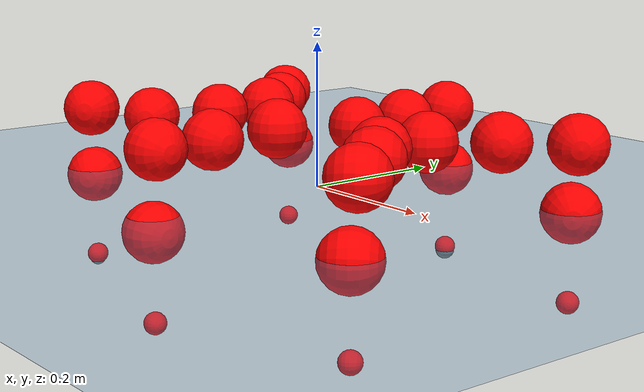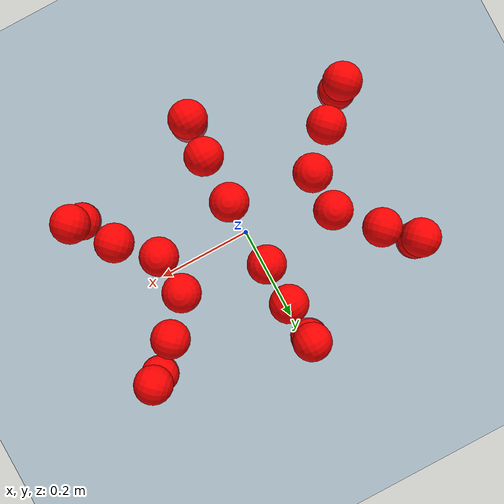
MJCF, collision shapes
<mujoco model="Golem">
  <compiler angle="radian" assetdir="assets" balanceinertia="true" inertiafromgeom="false"/>

  <option timestep="0.005" density="1.2" viscosity="2e-05"/>

  <size nkey="1"/>

  <visual>
    <quality shadowsize="8192"/>
    <map shadowclip="0.5"/>
  </visual>

  <default>
    <default class="/">
      <joint armature="0.01" damping="0.01" frictionloss="0.01"/>
      <geom contype="0" conaffinity="0" group="1" solref="-1000 -80"/>
      <site size="0.01 0.005 0.005" group="5"/>
      <general forcelimited="true" biastype="affine" gainprm="25" biasprm="0 -25 -0.5"/>
      <default class="visual">
        <geom type="mesh" group="2"/>
      </default>
      <default class="collision">
        <geom group="3"/>
      </default>
      <default class="foot">
        <geom size="0.01 0 0" condim="6" group="4" priority="1" solimp="0.015 1 0.01"/>
      </default>
      <default class="reward_collision_sphere">
        <geom group="5" rgba="1 0 0 1"/>
      </default>
    </default>
  </default>

  <asset>
    <texture type="skybox" colorspace="auto" name="//unnamed_texture_0" builtin="gradient" rgb1="0.95 0.95 0.95" rgb2="0.95 0.95 0.95" width="100" height="600"/>
    <texture type="2d" colorspace="auto" name="texplane" builtin="checker" rgb1="0.345 0.575 0.748" rgb2="0.345 0.575 0.748" markrgb="1 1 1" width="512" height="512"/>
    <material name="MatPlane" class="/" texture="texplane" texuniform="true" texrepeat="2 2" specular="0.9"/>
    <mesh name="body" class="/" file="body.stl" scale="0.001 0.001 0.001"/>
    <mesh name="coxa" class="/" file="coxa.stl" scale="0.001 0.001 0.001"/>
    <mesh name="femur" class="/" file="femur.stl" scale="0.001 0.001 0.001"/>
    <mesh name="tibia" class="/" file="tibia.stl" scale="0.001 0.001 0.001"/>
    <mesh name="tarsus" class="/" file="tarsus.stl" scale="0.001 0.001 0.001"/>
  </asset>

  <worldbody>
    <geom name="floor" class="/" size="100 100 0.125" type="plane" group="0" material="MatPlane"/>
    <light name="toplight_shadow" class="/" pos="0 0 5" dir="0.0990148 0.0990148 -0.990148" type="directional" ambient="0.04 0.04 0.04" diffuse="0.55 0.55 0.55" specular="0.12 0.12 0.12"/>
    <light name="toplight_fill" class="/" pos="0 0 5" dir="0.0990148 0.0990148 -0.990148" type="directional" castshadow="false" ambient="0.04 0.04 0.04" diffuse="0.3 0.3 0.3" specular="0.08 0.08 0.08"/>
    <body name="trunk" pos="0.00238448 0.0018754 0.00932987" quat="1 0.000517165 0.000317013 0.000388864">
      <inertial pos="-0.00272431 -0.00101275 -0.0084941" quat="0.999643 -0.0124841 -0.0233947 0.00340003" mass="3.66429" diaginertia="0.0218459 0.00312681 0.0166006"/>
      <joint name="//unnamed_joint_0" type="free"/>
      <geom name="//unnamed_geom_1" class="/" pos="0 0 0.0707702" quat="1 0 0 0" type="mesh" rgba="0.9 0.9 0.9 1" mesh="body"/>
      <site name="imu" class="/" pos="0.156994 -0.00868779 0.109898" size="0.0101402"/>
      <camera name="track" class="/" pos="0 -1.59962 0" quat="0.707107 0.707107 0 0" mode="trackcom"/>
      <camera name="ego_camera" class="/" pos="0.147739 0 0.110578" quat="-0.5 -0.5 0.5 0.5"/>
      <body name="coxa_RR" pos="-0.201381 -0.0673488 0.0763292" quat="0.38282 -0.000384386 -0.00045174 -0.923823">
        <inertial pos="-0.000914982 0.00908359 0.00156159" quat="0.999994 -0.0012493 0.000733091 0.00318758" mass="0.237871" diaginertia="0.0228221 0.00335904 0.0185821"/>
        <joint name="coxa_joint_RR" class="/" pos="0 0 0" axis="0.000236962 -0.0540132 -0.99854" range="-3.13162 3.23427" armature="0.0118877" damping="0.0240476" frictionloss="0.0109157"/>
        <geom name="//unnamed_geom_2" class="/" type="mesh" rgba="0.2 0.2 0.2 1" mesh="coxa"/>
        <geom name="//unnamed_geom_3" class="reward_collision_sphere" size="0.0405606" pos="-0.0340936 0 0"/>
        <body name="femur_RR" pos="0.0668841 0.000881999 -0.00686395" quat="0.500139 -0.500062 0.499905 0.499894">
          <inertial pos="-0.000552732 -0.00340096 0.00327793" quat="0.999985 0.00321536 0.00426543 0.00103528" mass="0.199874" diaginertia="0.0185017 0.00325474 0.0162334"/>
          <joint name="femur_joint_RR" class="/" pos="0 0 0" axis="0.00209046 -0.00354957 -0.999992" stiffness="0.0115603" range="-3.13651 3.30245" armature="0.012496" damping="0.0232706" frictionloss="0.00751204"/>
          <geom name="//unnamed_geom_4" class="/" type="mesh" rgba="0.9 0.9 0.9 1" mesh="femur"/>
          <geom name="//unnamed_geom_5" class="reward_collision_sphere" size="0.0405606"/>
          <body name="tibia_RR" pos="-0.00790466 -0.0914095 -0.00490864" quat="0.00141496 0.999999 6.09632e-05 0.000215671">
            <inertial pos="0.00720007 0.00408193 -3.28247e-05" quat="0.999589 0.00440583 -0.0212073 -0.0187823" mass="0.208025" diaginertia="0.0201423 0.00316027 0.0160406"/>
            <joint name="tibia_joint_RR" class="/" pos="0 0 0" axis="-0.00184294 -0.015092 0.999884" range="-2.96236 3.17094" armature="0.0126776" damping="0.0261826" frictionloss="0.0110124"/>
            <geom name="//unnamed_geom_6" class="/" type="mesh" rgba="0.2 0.2 0.2 1" mesh="tibia"/>
            <geom name="//unnamed_geom_7" class="reward_collision_sphere" size="0.0405606"/>
            <body name="tarsus_RR" pos="0.0991256 -0.0014665 -3.7769e-05" quat="1 -1.81378e-05 1.57369e-05 8.54645e-06">
              <inertial pos="0.0712951 -0.00789939 0.00527565" quat="0.494833 0.50342 0.499544 0.502159" mass="0.215013" diaginertia="0.0188059 0.00319284 0.0167514"/>
              <joint name="tarsus_joint_RR" class="/" pos="0 0 0" axis="0.0114409 -0.00340206 0.999929" stiffness="0.0462599" range="-3.10759 3.12901" armature="0.00705346" damping="0.0143726" frictionloss="0.00703308"/>
              <geom name="//unnamed_geom_8" class="/" type="mesh" rgba="0.9 0.9 0.9 1" mesh="tarsus"/>
              <geom name="foot_1" class="foot" size="0.0119902" pos="0.127283 0 0" quat="0 -0.707107 0 0.707107"/>
              <geom name="//unnamed_geom_10" class="reward_collision_sphere" size="0.0405606"/>
              <geom name="//unnamed_geom_11" class="reward_collision_sphere" size="0.0152102" pos="0.122169 0 0"/>
              <site name="foot_1" class="foot" pos="0.127283 0 0" quat="0 -0.707107 0 0.707107" size="0.0101402"/>
            </body>
          </body>
        </body>
      </body>
      <body name="coxa_RM" pos="-0.00157601 -0.104678 0.0799971" quat="0.708422 -0.00313099 0.00327687 -0.705774">
        <inertial pos="0.00741383 -0.000106378 0.00210742" quat="0.999976 0.00528458 0.00414849 0.00171706" mass="0.223847" diaginertia="0.0212753 0.00354857 0.0168137"/>
        <joint name="coxa_joint_RM" class="/" pos="0 0 0" axis="-0.000351956 0.000417827 -1" stiffness="0.010292" range="-2.93993 3.12107" armature="0.0103448" damping="0" frictionloss="0.00988957"/>
        <geom name="//unnamed_geom_12" class="/" type="mesh" rgba="0.2 0.2 0.2 1" mesh="coxa"/>
        <geom name="//unnamed_geom_13" class="reward_collision_sphere" size="0.0405606" pos="-0.0340936 0 0"/>
        <body name="femur_RM" pos="0.0711062 0.00102358 -0.00216374" quat="0.497577 -0.502974 0.499969 0.499465">
          <inertial pos="-0.00240567 0.00167909 -0.00158842" quat="0.999297 -0.034046 0.0154813 0.00262969" mass="0.191428" diaginertia="0.0175823 0.00324033 0.0148728"/>
          <joint name="femur_joint_RM" class="/" pos="0 0 0" axis="-0.00430914 -0.00947673 -0.999946" stiffness="0.0458757" range="-3.1743 3.11885" armature="0.0107991" damping="0.0236208" frictionloss="0.0109487"/>
          <geom name="//unnamed_geom_14" class="/" type="mesh" rgba="0.9 0.9 0.9 1" mesh="femur"/>
          <geom name="//unnamed_geom_15" class="reward_collision_sphere" size="0.0405606"/>
          <body name="tibia_RM" pos="0.00387744 -0.0813274 -0.00759584" quat="-0.000308001 1 9.08639e-05 0.000592906">
            <inertial pos="0.000454392 -0.0106805 0.00198298" quat="0.999997 -0.00201254 -0.00130524 -0.000157206" mass="0.185846" diaginertia="0.0171768 0.00291604 0.0140142"/>
            <joint name="tibia_joint_RM" class="/" pos="0 0 0" axis="-0.0179018 0.00619713 0.999821" range="-3.24034 3.35663" armature="0.00842871" damping="0.0482567" frictionloss="0.0111037"/>
            <geom name="//unnamed_geom_16" class="/" type="mesh" rgba="0.2 0.2 0.2 1" mesh="tibia"/>
            <geom name="//unnamed_geom_17" class="reward_collision_sphere" size="0.0405606"/>
            <body name="tarsus_RM" pos="0.106156 0.00803163 -0.00325898" quat="0.999996 -0.00204747 -0.00136546 -0.00114215">
              <inertial pos="0.0665745 -0.00953618 -0.00113293" quat="0.499685 0.49641 0.50225 0.501634" mass="0.2502" diaginertia="0.019942 0.00351647 0.0182233"/>
              <joint name="tarsus_joint_RM" class="/" pos="0 0 0" axis="0.0174168 0.00212033 0.999846" range="-3.17394 3.12376" armature="0.00820549" damping="0" frictionloss="0.00984151"/>
              <geom name="//unnamed_geom_18" class="/" type="mesh" rgba="0.9 0.9 0.9 1" mesh="tarsus"/>
              <geom name="foot_2" class="foot" size="0.00959613" pos="0.127283 0 0" quat="0 -0.707107 0 0.707107"/>
              <geom name="//unnamed_geom_20" class="reward_collision_sphere" size="0.0405606"/>
              <geom name="//unnamed_geom_21" class="reward_collision_sphere" size="0.0152102" pos="0.122169 0 0"/>
              <site name="foot_2" class="foot" pos="0.127283 0 0" quat="0 -0.707107 0 0.707107" size="0.0101402"/>
            </body>
          </body>
        </body>
      </body>
      <body name="coxa_RF" pos="0.198205 -0.0653565 0.0770178" quat="0.92345 -0.00142701 -0.00115647 -0.383716">
        <inertial pos="0.00798134 0.000339391 -0.00658681" quat="0.999839 0.00878247 -0.0155503 0.00190068" mass="0.178916" diaginertia="0.0173002 0.00321672 0.0151397"/>
        <joint name="coxa_joint_RF" class="/" pos="0 0 0" axis="0.00461624 -0.0180981 -0.999826" stiffness="0.00638279" range="-3.06264 3.14617" armature="0.0136218" damping="0" frictionloss="0.00800388"/>
        <geom name="//unnamed_geom_22" class="/" type="mesh" rgba="0.2 0.2 0.2 1" mesh="coxa"/>
        <geom name="//unnamed_geom_23" class="reward_collision_sphere" size="0.0405606" pos="-0.0340936 0 0"/>
        <body name="femur_RF" pos="0.0587328 -0.000988768 0.004965" quat="0.501369 -0.497178 0.502051 0.499387">
          <inertial pos="-0.00115458 0.00230527 0.00134637" quat="0.999972 0.00490986 -0.00186561 0.0052572" mass="0.256207" diaginertia="0.0190403 0.00372492 0.0195331"/>
          <joint name="femur_joint_RF" class="/" pos="0 0 0" axis="0.0058934 -0.0058028 -0.999966" stiffness="0.0487052" range="-3.17187 3.31357" armature="0.0150622" damping="0.015104" frictionloss="0.0152052"/>
          <geom name="//unnamed_geom_24" class="/" type="mesh" rgba="0.9 0.9 0.9 1" mesh="femur"/>
          <geom name="//unnamed_geom_25" class="reward_collision_sphere" size="0.0405606"/>
          <body name="tibia_RF" pos="0.000975034 -0.0955561 -0.00944348" quat="-0.000119298 1 -0.000440364 -0.000232028">
            <inertial pos="0.0081861 -0.000136589 0.000341679" quat="0.999955 0.00279377 0.000579802 0.00910155" mass="0.224823" diaginertia="0.0215444 0.00346783 0.0173671"/>
            <joint name="tibia_joint_RF" class="/" pos="0 0 0" axis="0.0141016 -0.00728321 0.999874" stiffness="0.0131661" range="-3.2253 3.17049" armature="0.01044" damping="0.0446165" frictionloss="0.00822936"/>
            <geom name="//unnamed_geom_26" class="/" type="mesh" rgba="0.2 0.2 0.2 1" mesh="tibia"/>
            <geom name="//unnamed_geom_27" class="reward_collision_sphere" size="0.0405606"/>
            <body name="tarsus_RF" pos="0.0970498 -0.000771372 0.00801508" quat="0.999996 -0.00202323 0.00141175 -0.000967891">
              <inertial pos="0.0756864 0.00374722 -0.00198644" quat="0.493167 0.481916 0.47785 0.544245" mass="0.217413" diaginertia="0.0197719 0.00317224 0.019147"/>
              <joint name="tarsus_joint_RF" class="/" pos="0 0 0" axis="0.00324065 0.0165061 0.999859" stiffness="0.00628787" range="-3.14126 3.14459" armature="0.0145549" damping="0.0115372" frictionloss="0.0138064"/>
              <geom name="//unnamed_geom_28" class="/" type="mesh" rgba="0.9 0.9 0.9 1" mesh="tarsus"/>
              <geom name="foot_3" class="foot" size="0.0101599" pos="0.127283 0 0" quat="0 -0.707107 0 0.707107"/>
              <geom name="//unnamed_geom_30" class="reward_collision_sphere" size="0.0405606"/>
              <geom name="//unnamed_geom_31" class="reward_collision_sphere" size="0.0152102" pos="0.122169 0 0"/>
              <site name="foot_3" class="foot" pos="0.127283 0 0" quat="0 -0.707107 0 0.707107" size="0.0101402"/>
            </body>
          </body>
        </body>
      </body>
      <body name="coxa_LR" pos="-0.202197 0.0664094 0.0777309" quat="0.382682 3.30338e-08 1.37772e-06 0.92388">
        <inertial pos="-0.00141819 0.00141031 -0.00162915" quat="0.998974 0.0356876 -0.0271715 0.00622169" mass="0.199348" diaginertia="0.0189908 0.00285441 0.0163495"/>
        <joint name="coxa_joint_LR" class="/" pos="0 0 0" axis="0.00633812 0.00856024 -0.999943" range="-3.17132 3.08887" armature="0.00664979" damping="0.0201071" frictionloss="0.00951241"/>
        <geom name="//unnamed_geom_32" class="/" type="mesh" rgba="0.2 0.2 0.2 1" mesh="coxa"/>
        <geom name="//unnamed_geom_33" class="reward_collision_sphere" size="0.0405606" pos="-0.0340936 0 0"/>
        <body name="femur_LR" pos="0.071035 -0.00427885 -0.00647522" quat="0.501551 -0.498274 0.499143 0.501024">
          <inertial pos="0.00710791 0.00875408 -0.00872046" quat="0.999999 7.63811e-05 -1.95843e-05 -0.00128823" mass="0.178885" diaginertia="0.0175184 0.00283733 0.0160699"/>
          <joint name="femur_joint_LR" class="/" pos="0 0 0" axis="-0.0210497 0.0422292 0.998886" stiffness="0.0152218" range="-3.03633 3.25651" armature="0.00464682" damping="0.0250235" frictionloss="0.0137027"/>
          <geom name="//unnamed_geom_34" class="/" type="mesh" rgba="0.9 0.9 0.9 1" mesh="femur"/>
          <geom name="//unnamed_geom_35" class="reward_collision_sphere" size="0.0405606"/>
          <body name="tibia_LR" pos="-0.000141587 -0.0806804 0.0029429" quat="0.000424555 0.999999 -0.000831448 0.000658344">
            <inertial pos="8.79446e-05 0.00873343 -3.38522e-05" quat="0.999885 0.0144254 -0.00476707 0.000170561" mass="0.238863" diaginertia="0.0212252 0.00334132 0.0196889"/>
            <joint name="tibia_joint_LR" class="/" pos="0 0 0" axis="0.0374509 0.0161916 -0.999167" stiffness="0.0397597" range="-3.12318 3.29758" armature="0.00988556" damping="0.0173002" frictionloss="0.00755922"/>
            <geom name="//unnamed_geom_36" class="/" type="mesh" rgba="0.2 0.2 0.2 1" mesh="tibia"/>
            <geom name="//unnamed_geom_37" class="reward_collision_sphere" size="0.0405606"/>
            <body name="tarsus_LR" pos="0.0899514 0.00789079 0.00421197" quat="0.999997 0.00233226 0.000240292 0.000562061">
              <inertial pos="0.0699296 -0.00213367 0.00607866" quat="0.506312 0.50289 0.495464 0.495243" mass="0.222452" diaginertia="0.0195911 0.00314527 0.0167501"/>
              <joint name="tarsus_joint_LR" class="/" pos="0 0 0" axis="0.00874911 0.0171072 -0.999815" stiffness="0.0149086" range="-3.01951 3.1119" armature="0.0137325" damping="0.0232328" frictionloss="0.00917394"/>
              <geom name="//unnamed_geom_38" class="/" type="mesh" rgba="0.9 0.9 0.9 1" mesh="tarsus"/>
              <geom name="foot_4" class="foot" size="0.0102047" pos="0.127283 0 0" quat="0.707107 0 -0.707107 0"/>
              <geom name="//unnamed_geom_40" class="reward_collision_sphere" size="0.0405606"/>
              <geom name="//unnamed_geom_41" class="reward_collision_sphere" size="0.0152102" pos="0.122169 0 0"/>
              <site name="foot_4" class="foot" pos="0.127283 0 0" quat="0.707107 0 -0.707107 0" size="0.0101402"/>
            </body>
          </body>
        </body>
      </body>
      <body name="coxa_LM" pos="-0.00910663 0.109509 0.066885" quat="0.707402 0.000170723 -0.00065696 0.706812">
        <inertial pos="-0.00431547 -0.00110777 -0.00149025" quat="0.999876 0.00790489 -0.013481 0.00175617" mass="0.221599" diaginertia="0.0169542 0.00329005 0.016088"/>
        <joint name="coxa_joint_LM" class="/" pos="0 0 0" axis="-0.0118458 0.0388888 -0.999173" stiffness="0.0101257" range="-3.18645 2.94106" armature="0.0100453" damping="0.0223274" frictionloss="0.00941107"/>
        <geom name="//unnamed_geom_42" class="/" type="mesh" rgba="0.2 0.2 0.2 1" mesh="coxa"/>
        <geom name="//unnamed_geom_43" class="reward_collision_sphere" size="0.0405606" pos="-0.0340936 0 0"/>
        <body name="femur_LM" pos="0.0572967 0.00188005 0.00176292" quat="0.501596 -0.501629 0.497119 0.499642">
          <inertial pos="-0.00561297 -0.0011831 0.00501135" quat="0.999964 0.00245867 -0.00354172 0.00737135" mass="0.170741" diaginertia="0.0173595 0.00299326 0.0140222"/>
          <joint name="femur_joint_LM" class="/" pos="0 0 0" axis="0.0146022 0.0265854 0.99954" range="-2.97012 3.30645" armature="0.00966458" damping="0" frictionloss="0.00756429"/>
          <geom name="//unnamed_geom_44" class="/" type="mesh" rgba="0.9 0.9 0.9 1" mesh="femur"/>
          <geom name="//unnamed_geom_45" class="reward_collision_sphere" size="0.0405606"/>
          <body name="tibia_LM" pos="-0.00226872 -0.0890327 0.00504218" quat="0.000112344 1 7.21988e-05 -0.000259589">
            <inertial pos="-0.00501081 -0.00335606 0.00189944" quat="0.999974 0.000917979 -0.00677943 -0.00244055" mass="0.193523" diaginertia="0.0176791 0.00349756 0.0149462"/>
            <joint name="tibia_joint_LM" class="/" pos="0 0 0" axis="-0.0206116 -0.0138995 -0.999691" stiffness="0.0537995" range="-3.17545 3.14972" armature="0.0143093" damping="0.0355795" frictionloss="0.00922048"/>
            <geom name="//unnamed_geom_46" class="/" type="mesh" rgba="0.2 0.2 0.2 1" mesh="tibia"/>
            <geom name="//unnamed_geom_47" class="reward_collision_sphere" size="0.0405606"/>
            <body name="tarsus_LM" pos="0.0926624 0.00130452 0.000140365" quat="1 -1.11814e-05 -1.18947e-05 0.000228614">
              <inertial pos="0.0673145 -0.000805471 -0.00656795" quat="0.496394 0.494617 0.496393 0.512387" mass="0.216198" diaginertia="0.02138 0.00302296 0.0163773"/>
              <joint name="tarsus_joint_LM" class="/" pos="0 0 0" axis="0.00821007 -0.0108084 -0.999908" stiffness="0.0265465" range="-3.12163 3.18362" armature="0.00954162" damping="0" frictionloss="0.0104442"/>
              <geom name="//unnamed_geom_48" class="/" type="mesh" rgba="0.9 0.9 0.9 1" mesh="tarsus"/>
              <geom name="foot_5" class="foot" size="0.0141284" pos="0.127283 0 0" quat="0.707107 0 -0.707107 0"/>
              <geom name="//unnamed_geom_50" class="reward_collision_sphere" size="0.0405606"/>
              <geom name="//unnamed_geom_51" class="reward_collision_sphere" size="0.0152102" pos="0.122169 0 0"/>
              <site name="foot_5" class="foot" pos="0.127283 0 0" quat="0.707107 0 -0.707107 0" size="0.0101402"/>
            </body>
          </body>
        </body>
      </body>
      <body name="coxa_LF" pos="0.193006 0.0688147 0.0738598" quat="0.923168 0.00392018 -0.000233418 0.384377">
        <inertial pos="-0.0006196 0.000634056 -0.00644008" quat="0.999999 2.64263e-05 0.00141702 2.77063e-07" mass="0.215149" diaginertia="0.0183358 0.00381116 0.0169288"/>
        <joint name="coxa_joint_LF" class="/" pos="0 0 0" axis="0.0191806 0.0294317 -0.999383" stiffness="0.00842858" range="-3.12362 3.17072" armature="0.0108366" damping="0.0109488" frictionloss="0.0135737"/>
        <geom name="//unnamed_geom_52" class="/" type="mesh" rgba="0.2 0.2 0.2 1" mesh="coxa"/>
        <geom name="//unnamed_geom_53" class="reward_collision_sphere" size="0.0405606" pos="-0.0340936 0 0"/>
        <body name="femur_LF" pos="0.0612005 0.00507741 0.000172226" quat="0.499975 -0.500363 0.4992 0.500462">
          <inertial pos="0.000721866 0.00142949 -0.00852605" quat="0.99968 -0.0147373 -0.0106838 -0.0175896" mass="0.181" diaginertia="0.0205325 0.0032947 0.016641"/>
          <joint name="femur_joint_LF" class="/" pos="0 0 0" axis="0.0299519 -0.00159775 0.99955" range="-3.1096 3.14615" armature="0.00944685" damping="0.0170128" frictionloss="0.00627363"/>
          <geom name="//unnamed_geom_54" class="/" type="mesh" rgba="0.9 0.9 0.9 1" mesh="femur"/>
          <geom name="//unnamed_geom_55" class="reward_collision_sphere" size="0.0405606"/>
          <body name="tibia_LF" pos="-0.000305139 -0.0973616 -0.00687098" quat="-4.21175e-05 0.999989 -0.00213438 0.00406484">
            <inertial pos="0.00100965 -0.00230559 0.00630131" quat="0.999008 0.0053775 0.0387461 0.0212749" mass="0.189356" diaginertia="0.0170454 0.00321744 0.0163496"/>
            <joint name="tibia_joint_LF" class="/" pos="0 0 0" axis="0.00014196 0.000572463 -1" stiffness="0.0344506" range="-3.35269 3.09063" armature="0.00947335" damping="0" frictionloss="0.0103003"/>
            <geom name="//unnamed_geom_56" class="/" type="mesh" rgba="0.2 0.2 0.2 1" mesh="tibia"/>
            <geom name="//unnamed_geom_57" class="reward_collision_sphere" size="0.0405606"/>
            <body name="tarsus_LF" pos="0.0906692 -0.0067874 -9.51395e-05" quat="0.999999 0.00015254 -0.000190317 -0.00147809">
              <inertial pos="0.0777049 0.00129176 0.00149297" quat="0.501102 0.497965 0.500726 0.500201" mass="0.233446" diaginertia="0.0210709 0.00367582 0.0156425"/>
              <joint name="tarsus_joint_LF" class="/" pos="0 0 0" axis="0.0193763 0.0326074 -0.99928" stiffness="0.0321693" range="-3.15617 3.27358" armature="0.00581527" damping="0.0024951" frictionloss="0.00494792"/>
              <geom name="//unnamed_geom_58" class="/" type="mesh" rgba="0.9 0.9 0.9 1" mesh="tarsus"/>
              <geom name="foot_6" class="foot" size="0.0101326" pos="0.127283 0 0" quat="0.707107 0 -0.707107 0"/>
              <geom name="//unnamed_geom_60" class="reward_collision_sphere" size="0.0405606"/>
              <geom name="//unnamed_geom_61" class="reward_collision_sphere" size="0.0152102" pos="0.122169 0 0"/>
              <site name="foot_6" class="foot" pos="0.127283 0 0" quat="0.707107 0 -0.707107 0" size="0.0101402"/>
            </body>
          </body>
        </body>
      </body>
    </body>
  </worldbody>

  <contact>
    <pair class="/" geom1="floor" geom2="foot_1" name="//unnamed_contact_0"/>
    <pair class="/" geom1="floor" geom2="foot_2" name="//unnamed_contact_1"/>
    <pair class="/" geom1="floor" geom2="foot_3" name="//unnamed_contact_2"/>
    <pair class="/" geom1="floor" geom2="foot_4" name="//unnamed_contact_3"/>
    <pair class="/" geom1="floor" geom2="foot_5" name="//unnamed_contact_4"/>
    <pair class="/" geom1="floor" geom2="foot_6" name="//unnamed_contact_5"/>
  </contact>

  <actuator>
    <general name="coxa_joint_RR" class="/" joint="coxa_joint_RR" forcerange="-6.21282 6.21282" gainprm="25.0575" biasprm="0 -25.0575 -0.513416"/>
    <general name="femur_joint_RR" class="/" joint="femur_joint_RR" forcerange="-5.83597 5.83597" gainprm="25.0575" biasprm="0 -25.0575 -0.513416"/>
    <general name="tibia_joint_RR" class="/" joint="tibia_joint_RR" forcerange="-9.07428 9.07428" gainprm="25.0575" biasprm="0 -25.0575 -0.513416"/>
    <general name="tarsus_joint_RR" class="/" joint="tarsus_joint_RR" forcerange="-9.2769 9.2769" gainprm="25.0575" biasprm="0 -25.0575 -0.513416"/>
    <general name="coxa_joint_RM" class="/" joint="coxa_joint_RM" forcerange="-9.75393 9.75393" gainprm="25.0575" biasprm="0 -25.0575 -0.513416"/>
    <general name="femur_joint_RM" class="/" joint="femur_joint_RM" forcerange="-7.65001 7.65001" gainprm="25.0575" biasprm="0 -25.0575 -0.513416"/>
    <general name="tibia_joint_RM" class="/" joint="tibia_joint_RM" forcerange="-6.99743 6.99743" gainprm="25.0575" biasprm="0 -25.0575 -0.513416"/>
    <general name="tarsus_joint_RM" class="/" joint="tarsus_joint_RM" forcerange="-6.87061 6.87061" gainprm="25.0575" biasprm="0 -25.0575 -0.513416"/>
    <general name="coxa_joint_RF" class="/" joint="coxa_joint_RF" forcerange="-7.87779 7.87779" gainprm="25.0575" biasprm="0 -25.0575 -0.513416"/>
    <general name="femur_joint_RF" class="/" joint="femur_joint_RF" forcerange="-4.4862 4.4862" gainprm="25.0575" biasprm="0 -25.0575 -0.513416"/>
    <general name="tibia_joint_RF" class="/" joint="tibia_joint_RF" forcerange="-4.96308 4.96308" gainprm="25.0575" biasprm="0 -25.0575 -0.513416"/>
    <general name="tarsus_joint_RF" class="/" joint="tarsus_joint_RF" forcerange="-5.17913 5.17913" gainprm="25.0575" biasprm="0 -25.0575 -0.513416"/>
    <general name="coxa_joint_LR" class="/" joint="coxa_joint_LR" forcerange="-7.3808 7.3808" gainprm="25.0575" biasprm="0 -25.0575 -0.513416"/>
    <general name="femur_joint_LR" class="/" joint="femur_joint_LR" forcerange="-7.8309 7.8309" gainprm="25.0575" biasprm="0 -25.0575 -0.513416"/>
    <general name="tibia_joint_LR" class="/" joint="tibia_joint_LR" forcerange="-4.60078 4.60078" gainprm="25.0575" biasprm="0 -25.0575 -0.513416"/>
    <general name="tarsus_joint_LR" class="/" joint="tarsus_joint_LR" forcerange="-4.96451 4.96451" gainprm="25.0575" biasprm="0 -25.0575 -0.513416"/>
    <general name="coxa_joint_LM" class="/" joint="coxa_joint_LM" forcerange="-7.93292 7.93292" gainprm="25.0575" biasprm="0 -25.0575 -0.513416"/>
    <general name="femur_joint_LM" class="/" joint="femur_joint_LM" forcerange="-6.95685 6.95685" gainprm="25.0575" biasprm="0 -25.0575 -0.513416"/>
    <general name="tibia_joint_LM" class="/" joint="tibia_joint_LM" forcerange="-7.27861 7.27861" gainprm="25.0575" biasprm="0 -25.0575 -0.513416"/>
    <general name="tarsus_joint_LM" class="/" joint="tarsus_joint_LM" forcerange="-7.87075 7.87075" gainprm="25.0575" biasprm="0 -25.0575 -0.513416"/>
    <general name="coxa_joint_LF" class="/" joint="coxa_joint_LF" forcerange="-7.28661 7.28661" gainprm="25.0575" biasprm="0 -25.0575 -0.513416"/>
    <general name="femur_joint_LF" class="/" joint="femur_joint_LF" forcerange="-5.26125 5.26125" gainprm="25.0575" biasprm="0 -25.0575 -0.513416"/>
    <general name="tibia_joint_LF" class="/" joint="tibia_joint_LF" forcerange="-5.46381 5.46381" gainprm="25.0575" biasprm="0 -25.0575 -0.513416"/>
    <general name="tarsus_joint_LF" class="/" joint="tarsus_joint_LF" forcerange="-7.85936 7.85936" gainprm="25.0575" biasprm="0 -25.0575 -0.513416"/>
  </actuator>

  <sensor>
    <gyro site="imu" name="imu_angular_velocity"/>
    <velocimeter site="imu" name="imu_linear_velocity"/>
    <framelinvel objtype="site" objname="foot_1" name="foot_1_global_linear_velocity"/>
    <framelinvel objtype="site" objname="foot_2" name="foot_2_global_linear_velocity"/>
    <framelinvel objtype="site" objname="foot_3" name="foot_3_global_linear_velocity"/>
    <framelinvel objtype="site" objname="foot_4" name="foot_4_global_linear_velocity"/>
    <framelinvel objtype="site" objname="foot_5" name="foot_5_global_linear_velocity"/>
    <framelinvel objtype="site" objname="foot_6" name="foot_6_global_linear_velocity"/>
  </sensor>

  <keyframe>
    <key name="home" qpos="0 0 0.1457 1 0 0 0 0 0 0 0 0 0 0 0 0 0 0 0 0 0 0 0 0 0 0 0 0 0 0 0"/>
  </keyframe>
</mujoco>
